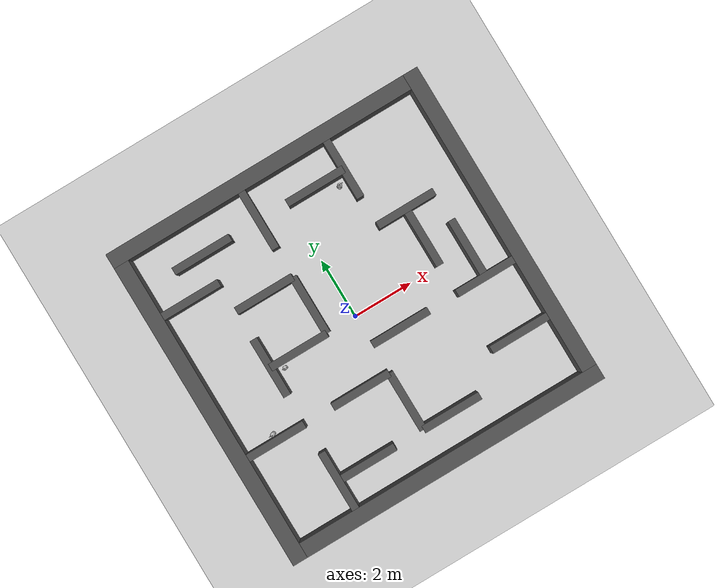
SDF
<sdf version="1.6">
 <world name="default">
  <include><uri>model://ground_plane</uri></include>
  <include><uri>model://sun</uri><pose>0 0 10 0 -0 0</pose></include>
  <spherical_coordinates>
   <surface_model>EARTH_WGS84</surface_model>
   <latitude_deg>38.161479</latitude_deg>
   <longitude_deg>-122.454630</longitude_deg>
   <elevation>488.0</elevation>
   <heading_deg>180</heading_deg>
  </spherical_coordinates>
  <physics type="ode">
   <real_time_update_rate>1000.0</real_time_update_rate>
   <max_step_size>0.001</max_step_size>
   <real_time_factor>1</real_time_factor>
   <ode>
    <solver>
     <type>quick</type>
     <iters>150</iters>
     <precon_iters>0</precon_iters>
     <sor>1.400000</sor>
     <use_dynamic_moi_rescaling>1</use_dynamic_moi_rescaling>
    </solver>
    <constraints>
     <cfm>0.00001</cfm>
     <erp>0.2</erp>
     <contact_max_correcting_vel>2000.000000</contact_max_correcting_vel>
     <contact_surface_layer>0.01000</contact_surface_layer>
    </constraints>
   </ode>
  </physics>
  <model name="maze"><static>1</static><include><uri>model://maze_light</uri></include></model>
  <model name="sohwagi_0">
   <pose>1.659510 3.669576 0 0 0 0</pose>
   <include><uri>model://sohwagi</uri></include>
  </model>
  <model name="sohwagi_2">
   <pose>-4.026260 -1.791360 0 0 0 0</pose>
   <include><uri>model://sohwagi</uri></include>
  </model>
  <model name="sohwagi_3">
   <pose>-2.655270 -0.239181 0 0 0 0</pose>
   <include><uri>model://sohwagi</uri></include>
  </model>
 </world>
</sdf>

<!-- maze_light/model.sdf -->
<sdf version='1.7'>
  <model name='maze_light'>
    <pose>0 0 0 0 0 0</pose>
    <link name='Outer_Wall_0'>
      <collision name='Wall_0_Collision'>
        <geometry>
          <box>
            <size>10.5 0.5 0.5</size>
          </box>
        </geometry>
        <pose>0 0 0 0 -0 0</pose>
      </collision>
      <visual name='Wall_0_Visual'>
        <pose>0 0 0 0 -0 0</pose>
        <geometry>
          <box>
            <size>10.5 0.5 0.5</size>
          </box>
        </geometry>
        <material>
          <script>
            <uri>file://media/materials/scripts/gazebo.material</uri>
            <name>Gazebo/DarkGrey</name>
          </script>
          <ambient>0 0 0 1</ambient>
        </material>
        <meta>
          <layer>0</layer>
        </meta>
      </visual>
      <pose>5.25 0.25 0.25 0 0 -1.5708</pose>
    </link>
    <link name='Outer_Wall_1'>
      <collision name='Wall_1_Collision'>
        <geometry>
          <box>
            <size>10.5 0.5 0.5</size>
          </box>
        </geometry>
        <pose>0 0 0 0 -0 0</pose>
      </collision>
      <visual name='Wall_1_Visual'>
        <pose>0 0 0 0 -0 0</pose>
        <geometry>
          <box>
            <size>10.5 0.5 0.5</size>
          </box>
        </geometry>
        <material>
          <script>
            <uri>file://media/materials/scripts/gazebo.material</uri>
            <name>Gazebo/DarkGrey</name>
          </script>
          <ambient>0 0 0 1</ambient>
        </material>
        <meta>
          <layer>0</layer>
        </meta>
      </visual>
      <pose>-0.25 5.25 0.25 0 0 0</pose>
    </link>
    <link name='Outer_Wall_2'>
      <collision name='Wall_2_Collision'>
        <geometry>
          <box>
            <size>10.5 0.5 0.5</size>
          </box>
        </geometry>
        <pose>0 0 0 0 -0 0</pose>
      </collision>
      <visual name='Wall_2_Visual'>
        <pose>0 0 0 0 -0 0</pose>
        <geometry>
          <box>
            <size>10.5 0.5 0.5</size>
          </box>
        </geometry>
        <material>
          <script>
            <uri>file://media/materials/scripts/gazebo.material</uri>
            <name>Gazebo/DarkGrey</name>
          </script>
          <ambient>0 0 0 1</ambient>
        </material>
        <meta>
          <layer>0</layer>
        </meta>
      </visual>
      <pose>-5.25 -0.25 0.25 0 0 1.5708</pose>
    </link>
    <link name='Outer_Wall_3'>
      <collision name='Wall_3_Collision'>
        <geometry>
          <box>
            <size>10.5 0.5 0.5</size>
          </box>
        </geometry>
        <pose>0 0 0 0 -0 0</pose>
      </collision>
      <visual name='Wall_3_Visual'>
        <pose>0 0 0 0 -0 0</pose>
        <geometry>
          <box>
            <size>10.5 0.5 0.5</size>
          </box>
        </geometry>
        <material>
          <script>
            <uri>file://media/materials/scripts/gazebo.material</uri>
            <name>Gazebo/DarkGrey</name>
          </script>
          <ambient>0 0 0 1</ambient>
        </material>
        <meta>
          <layer>0</layer>
        </meta>
      </visual>
      <pose>0.25 -5.25 0.25 0 0 0</pose>
    </link>
    <link name='Inner_Wall_0'>
      <collision name='Inner_Wall_0_Collision'>
        <geometry>
          <box>
            <size>2 0.25 0.5</size>
          </box>
        </geometry>
        <pose>0 0 0 0 -0 0</pose>
      </collision>
      <visual name='Inner_Wall_0_Visual'>
        <pose>0 0 0 0 -0 0</pose>
        <geometry>
          <box>
            <size>2 0.25 0.5</size>
          </box>
        </geometry>
        <material>
          <script>
            <uri>file://media/materials/scripts/gazebo.material</uri>
            <name>Gazebo/DarkGrey</name>
          </script>
          <ambient>0 0 0 1</ambient>
        </material>
        <meta>
          <layer>0</layer>
        </meta>
      </visual>
      <pose>4 -3 0.25 0 -0 0</pose>
    </link>
    <link name='Inner_Wall_1'>
      <collision name='Inner_Wall_1_Collision'>
        <geometry>
          <box>
            <size>2 0.25 0.5</size>
          </box>
        </geometry>
        <pose>0 0 0 0 -0 0</pose>
      </collision>
      <visual name='Inner_Wall_1_Visual'>
        <pose>0 0 0 0 -0 0</pose>
        <geometry>
          <box>
            <size>2 0.25 0.5</size>
          </box>
        </geometry>
        <material>
          <script>
            <uri>file://media/materials/scripts/gazebo.material</uri>
            <name>Gazebo/DarkGrey</name>
          </script>
          <ambient>0 0 0 1</ambient>
        </material>
        <meta>
          <layer>0</layer>
        </meta>
      </visual>
      <pose>4 -1 0.25 0 -0 0</pose>
    </link>
    <link name='Inner_Wall_2'>
      <collision name='Inner_Wall_2_Collision'>
        <geometry>
          <box>
            <size>2 0.25 0.5</size>
          </box>
        </geometry>
        <pose>0 0 0 0 -0 0</pose>
      </collision>
      <visual name='Inner_Wall_2_Visual'>
        <pose>0 0 0 0 -0 0</pose>
        <geometry>
          <box>
            <size>2 0.25 0.5</size>
          </box>
        </geometry>
        <material>
          <script>
            <uri>file://media/materials/scripts/gazebo.material</uri>
            <name>Gazebo/DarkGrey</name>
          </script>
          <ambient>0 0 0 1</ambient>
        </material>
        <meta>
          <layer>0</layer>
        </meta>
      </visual>
      <pose>1 4 0.25 0 -0 0</pose>
    </link>
    <link name='Inner_Wall_3'>
      <collision name='Inner_Wall_3_Collision'>
        <geometry>
          <box>
            <size>2 0.25 0.5</size>
          </box>
        </geometry>
        <pose>0 0 0 0 -0 0</pose>
      </collision>
      <visual name='Inner_Wall_3_Visual'>
        <pose>0 0 0 0 -0 0</pose>
        <geometry>
          <box>
            <size>2 0.25 0.5</size>
          </box>
        </geometry>
        <material>
          <script>
            <uri>file://media/materials/scripts/gazebo.material</uri>
            <name>Gazebo/DarkGrey</name>
          </script>
          <ambient>0 0 0 1</ambient>
        </material>
        <meta>
          <layer>0</layer>
        </meta>
      </visual>
      <pose>2 4 0.25 0 -0 1.5708</pose>
    </link>
    <link name='Inner_Wall_4'>
      <collision name='Inner_Wall_4_Collision'>
        <geometry>
          <box>
            <size>2 0.25 0.5</size>
          </box>
        </geometry>
        <pose>0 0 0 0 -0 0</pose>
      </collision>
      <visual name='Inner_Wall_4_Visual'>
        <pose>0 0 0 0 -0 0</pose>
        <geometry>
          <box>
            <size>2 0.25 0.5</size>
          </box>
        </geometry>
        <material>
          <script>
            <uri>file://media/materials/scripts/gazebo.material</uri>
            <name>Gazebo/DarkGrey</name>
          </script>
          <ambient>0 0 0 1</ambient>
        </material>
        <meta>
          <layer>0</layer>
        </meta>
      </visual>
      <pose>-1 4 0.25 0 -0 1.5708</pose>
    </link>
    <link name='Inner_Wall_5'>
      <collision name='Inner_Wall_5_Collision'>
        <geometry>
          <box>
            <size>2 0.25 0.5</size>
          </box>
        </geometry>
        <pose>0 0 0 0 -0 0</pose>
      </collision>
      <visual name='Inner_Wall_5_Visual'>
        <pose>0 0 0 0 -0 0</pose>
        <geometry>
          <box>
            <size>2 0.25 0.5</size>
          </box>
        </geometry>
        <material>
          <script>
            <uri>file://media/materials/scripts/gazebo.material</uri>
            <name>Gazebo/DarkGrey</name>
          </script>
          <ambient>0 0 0 1</ambient>
        </material>
        <meta>
          <layer>0</layer>
        </meta>
      </visual>
      <pose>-2 2 0.25 0 -0 0</pose>
    </link>
    <link name='Inner_Wall_6'>
      <collision name='Inner_Wall_6_Collision'>
        <geometry>
          <box>
            <size>2 0.25 0.5</size>
          </box>
        </geometry>
        <pose>0 0 0 0 -0 0</pose>
      </collision>
      <visual name='Inner_Wall_6_Visual'>
        <pose>0 0 0 0 -0 0</pose>
        <geometry>
          <box>
            <size>2 0.25 0.5</size>
          </box>
        </geometry>
        <material>
          <script>
            <uri>file://media/materials/scripts/gazebo.material</uri>
            <name>Gazebo/DarkGrey</name>
          </script>
          <ambient>0 0 0 1</ambient>
        </material>
        <meta>
          <layer>0</layer>
        </meta>
      </visual>
      <pose>-2 0 0.25 0 -0 0</pose>
    </link>
    <link name='Inner_Wall_7'>
      <collision name='Inner_Wall_7_Collision'>
        <geometry>
          <box>
            <size>2 0.25 0.5</size>
          </box>
        </geometry>
        <pose>0 0 0 0 -0 0</pose>
      </collision>
      <visual name='Inner_Wall_7_Visual'>
        <pose>0 0 0 0 -0 0</pose>
        <geometry>
          <box>
            <size>2 0.25 0.5</size>
          </box>
        </geometry>
        <material>
          <script>
            <uri>file://media/materials/scripts/gazebo.material</uri>
            <name>Gazebo/DarkGrey</name>
          </script>
          <ambient>0 0 0 1</ambient>
        </material>
        <meta>
          <layer>0</layer>
        </meta>
      </visual>
      <pose>-1 -2 0.25 0 -0 0</pose>
    </link>
    <link name='Inner_Wall_8'>
      <collision name='Inner_Wall_8_Collision'>
        <geometry>
          <box>
            <size>2 0.25 0.5</size>
          </box>
        </geometry>
        <pose>0 0 0 0 -0 0</pose>
      </collision>
      <visual name='Inner_Wall_8_Visual'>
        <pose>0 0 0 0 -0 0</pose>
        <geometry>
          <box>
            <size>2 0.25 0.5</size>
          </box>
        </geometry>
        <material>
          <script>
            <uri>file://media/materials/scripts/gazebo.material</uri>
            <name>Gazebo/DarkGrey</name>
          </script>
          <ambient>0 0 0 1</ambient>
        </material>
        <meta>
          <layer>0</layer>
        </meta>
      </visual>
      <pose>1 -4 0.25 0 -0 0</pose>
    </link>
    <link name='Inner_Wall_9'>
      <collision name='Inner_Wall_9_Collision'>
        <geometry>
          <box>
            <size>2 0.25 0.5</size>
          </box>
        </geometry>
        <pose>0 0 0 0 -0 0</pose>
      </collision>
      <visual name='Inner_Wall_9_Visual'>
        <pose>0 0 0 0 -0 0</pose>
        <geometry>
          <box>
            <size>2 0.25 0.5</size>
          </box>
        </geometry>
        <material>
          <script>
            <uri>file://media/materials/scripts/gazebo.material</uri>
            <name>Gazebo/DarkGrey</name>
          </script>
          <ambient>0 0 0 1</ambient>
        </material>
        <meta>
          <layer>0</layer>
        </meta>
      </visual>
      <pose>3 2 0.25 0 -0 0</pose>
    </link>
    <link name='Inner_Wall_10'>
      <collision name='Inner_Wall_10_Collision'>
        <geometry>
          <box>
            <size>2 0.25 0.5</size>
          </box>
        </geometry>
        <pose>0 0 0 0 -0 0</pose>
      </collision>
      <visual name='Inner_Wall_10_Visual'>
        <pose>0 0 0 0 -0 0</pose>
        <geometry>
          <box>
            <size>2 0.25 0.5</size>
          </box>
        </geometry>
        <material>
          <script>
            <uri>file://media/materials/scripts/gazebo.material</uri>
            <name>Gazebo/DarkGrey</name>
          </script>
          <ambient>0 0 0 1</ambient>
        </material>
        <meta>
          <layer>0</layer>
        </meta>
      </visual>
      <pose>3 1 0.25 0 -0 1.5708</pose>
    </link>
    <link name='Inner_Wall_11'>
      <collision name='Inner_Wall_11_Collision'>
        <geometry>
          <box>
            <size>2 0.25 0.5</size>
          </box>
        </geometry>
        <pose>0 0 0 0 -0 0</pose>
      </collision>
      <visual name='Inner_Wall_11_Visual'>
        <pose>0 0 0 0 -0 0</pose>
        <geometry>
          <box>
            <size>2 0.25 0.5</size>
          </box>
        </geometry>
        <material>
          <script>
            <uri>file://media/materials/scripts/gazebo.material</uri>
            <name>Gazebo/DarkGrey</name>
          </script>
          <ambient>0 0 0 1</ambient>
        </material>
        <meta>
          <layer>0</layer>
        </meta>
      </visual>
      <pose>-1 1 0.25 0 -0 1.5708</pose>
    </link>
    <link name='Inner_Wall_12'>
      <collision name='Inner_Wall_12_Collision'>
        <geometry>
          <box>
            <size>2 0.25 0.5</size>
          </box>
        </geometry>
        <pose>0 0 0 0 -0 0</pose>
      </collision>
      <visual name='Inner_Wall_12_Visual'>
        <pose>0 0 0 0 -0 0</pose>
        <geometry>
          <box>
            <size>2 0.25 0.5</size>
          </box>
        </geometry>
        <material>
          <script>
            <uri>file://media/materials/scripts/gazebo.material</uri>
            <name>Gazebo/DarkGrey</name>
          </script>
          <ambient>0 0 0 1</ambient>
        </material>
        <meta>
          <layer>0</layer>
        </meta>
      </visual>
      <pose>0 -3 0.25 0 -0 1.5708</pose>
    </link>
    <link name='Inner_Wall_13'>
      <collision name='Inner_Wall_13_Collision'>
        <geometry>
          <box>
            <size>2 0.25 0.5</size>
          </box>
        </geometry>
        <pose>0 0 0 0 -0 0</pose>
      </collision>
      <visual name='Inner_Wall_13_Visual'>
        <pose>0 0 0 0 -0 0</pose>
        <geometry>
          <box>
            <size>2 0.25 0.5</size>
          </box>
        </geometry>
        <material>
          <script>
            <uri>file://media/materials/scripts/gazebo.material</uri>
            <name>Gazebo/DarkGrey</name>
          </script>
          <ambient>0 0 0 1</ambient>
        </material>
        <meta>
          <layer>0</layer>
        </meta>
      </visual>
      <pose>1 -1 0.25 0 -0 0</pose>
    </link>
    <link name='Inner_Wall_14'>
      <collision name='Inner_Wall_14_Collision'>
        <geometry>
          <box>
            <size>2 0.25 0.5</size>
          </box>
        </geometry>
        <pose>0 0 0 0 -0 0</pose>
      </collision>
      <visual name='Inner_Wall_14_Visual'>
        <pose>0 0 0 0 -0 0</pose>
        <geometry>
          <box>
            <size>2 0.25 0.5</size>
          </box>
        </geometry>
        <material>
          <script>
            <uri>file://media/materials/scripts/gazebo.material</uri>
            <name>Gazebo/DarkGrey</name>
          </script>
          <ambient>0 0 0 1</ambient>
        </material>
        <meta>
          <layer>0</layer>
        </meta>
      </visual>
      <pose>-3 4 0.25 0 -0 0</pose>
    </link>
    <link name='Inner_Wall_15'>
      <collision name='Inner_Wall_15_Collision'>
        <geometry>
          <box>
            <size>2 0.25 0.5</size>
          </box>
        </geometry>
        <pose>0 0 0 0 -0 0</pose>
      </collision>
      <visual name='Inner_Wall_15_Visual'>
        <pose>0 0 0 0 -0 0</pose>
        <geometry>
          <box>
            <size>2 0.25 0.5</size>
          </box>
        </geometry>
        <material>
          <script>
            <uri>file://media/materials/scripts/gazebo.material</uri>
            <name>Gazebo/DarkGrey</name>
          </script>
          <ambient>0 0 0 1</ambient>
        </material>
        <meta>
          <layer>0</layer>
        </meta>
      </visual>
      <pose>4 0 0.25 0 -0 1.5708</pose>
    </link>
    <link name='Inner_Wall_16'>
      <collision name='Inner_Wall_16_Collision'>
        <geometry>
          <box>
            <size>2 0.25 0.5</size>
          </box>
        </geometry>
        <pose>0 0 0 0 -0 0</pose>
      </collision>
      <visual name='Inner_Wall_16_Visual'>
        <pose>0 0 0 0 -0 0</pose>
        <geometry>
          <box>
            <size>2 0.25 0.5</size>
          </box>
        </geometry>
        <material>
          <script>
            <uri>file://media/materials/scripts/gazebo.material</uri>
            <name>Gazebo/DarkGrey</name>
          </script>
          <ambient>0 0 0 1</ambient>
        </material>
        <meta>
          <layer>0</layer>
        </meta>
      </visual>
      <pose>-4 3 0.25 0 -0 0</pose>
    </link>
    <link name='Inner_Wall_17'>
      <collision name='Inner_Wall_17_Collision'>
        <geometry>
          <box>
            <size>2 0.25 0.5</size>
          </box>
        </geometry>
        <pose>0 0 0 0 -0 0</pose>
      </collision>
      <visual name='Inner_Wall_17_Visual'>
        <pose>0 0 0 0 -0 0</pose>
        <geometry>
          <box>
            <size>2 0.25 0.5</size>
          </box>
        </geometry>
        <material>
          <script>
            <uri>file://media/materials/scripts/gazebo.material</uri>
            <name>Gazebo/DarkGrey</name>
          </script>
          <ambient>0 0 0 1</ambient>
        </material>
        <meta>
          <layer>0</layer>
        </meta>
      </visual>
      <pose>-3 0 0.25 0 -0 1.5708</pose>
    </link>
    <link name='Inner_Wall_18'>
      <collision name='Inner_Wall_18_Collision'>
        <geometry>
          <box>
            <size>2 0.25 0.5</size>
          </box>
        </geometry>
        <pose>0 0 0 0 -0 0</pose>
      </collision>
      <visual name='Inner_Wall_18_Visual'>
        <pose>0 0 0 0 -0 0</pose>
        <geometry>
          <box>
            <size>2 0.25 0.5</size>
          </box>
        </geometry>
        <material>
          <script>
            <uri>file://media/materials/scripts/gazebo.material</uri>
            <name>Gazebo/DarkGrey</name>
          </script>
          <ambient>0 0 0 1</ambient>
        </material>
        <meta>
          <layer>0</layer>
        </meta>
      </visual>
      <pose>-4 -2 0.25 0 -0 0</pose>
    </link>
    <link name='Inner_Wall_19'>
      <collision name='Inner_Wall_19_Collision'>
        <geometry>
          <box>
            <size>2 0.25 0.5</size>
          </box>
        </geometry>
        <pose>0 0 0 0 -0 0</pose>
      </collision>
      <visual name='Inner_Wall_19_Visual'>
        <pose>0 0 0 0 -0 0</pose>
        <geometry>
          <box>
            <size>2 0.25 0.5</size>
          </box>
        </geometry>
        <material>
          <script>
            <uri>file://media/materials/scripts/gazebo.material</uri>
            <name>Gazebo/DarkGrey</name>
          </script>
          <ambient>0 0 0 1</ambient>
        </material>
        <meta>
          <layer>0</layer>
        </meta>
      </visual>
      <pose>-3 -4 0.25 0 -0 1.5708</pose>
    </link>
    <link name='Inner_Wall_20'>
      <collision name='Inner_Wall_20_Collision'>
        <geometry>
          <box>
            <size>2 0.25 0.5</size>
          </box>
        </geometry>
        <pose>0 0 0 0 -0 0</pose>
      </collision>
      <visual name='Inner_Wall_20_Visual'>
        <pose>0 0 0 0 -0 0</pose>
        <geometry>
          <box>
            <size>2 0.25 0.5</size>
          </box>
        </geometry>
        <material>
          <script>
            <uri>file://media/materials/scripts/gazebo.material</uri>
            <name>Gazebo/DarkGrey</name>
          </script>
          <ambient>0 0 0 1</ambient>
        </material>
        <meta>
          <layer>0</layer>
        </meta>
      </visual>
      <pose>-2 -4 0.25 0 -0 0</pose>
    </link>

    <link name='light_link_0'>
      <pose>-10.5434 0 10.6208 0 -0.563594 0</pose>
      <light name='user_spot_light_0' type='spot'>
        <pose>-1.96683 0.902064 1 0 -0 0</pose>
        <diffuse>0.5 0.5 0.5 1</diffuse>
        <specular>0.1 0.1 0.1 1</specular>
        <direction>0 0 -1</direction>
        <attenuation>
          <range>20</range>
          <constant>0.5</constant>
          <linear>0.01</linear>
          <quadratic>0.001</quadratic>
        </attenuation>
        <cast_shadows>0</cast_shadows>
        <spot>
          <inner_angle>0.6</inner_angle>
          <outer_angle>1</outer_angle>
          <falloff>1</falloff>
        </spot>
      </light>
    </link>

    <link name='light_link_1'>
      <pose>0 -15.0454 11.2272 0.969351 -0 0</pose>
      <light name='user_spot_light_1' type='spot'>
        <pose>0 -8 1 0 -0 0</pose>
        <diffuse>0.5 0.5 0.5 1</diffuse>
        <specular>0.1 0.1 0.1 1</specular>
        <direction>0 0 -1</direction>
        <attenuation>
          <range>30</range>
          <constant>0.5</constant>
          <linear>0.01</linear>
          <quadratic>0.001</quadratic>
        </attenuation>
        <cast_shadows>0</cast_shadows>
        <spot>
          <inner_angle>0.6</inner_angle>
          <outer_angle>1</outer_angle>
          <falloff>1</falloff>
        </spot>
      </light>
    </link>

    <link name='light_link_2'>
      <pose>12.553316 0 8 0 0.78597 0</pose>
      <light name='user_spot_light_2' type='spot'>
        <pose>0 0 0 0 0 0</pose>
        <diffuse>0.5 0.5 0.5 1</diffuse>
        <specular>0.1 0.1 0.1 1</specular>
        <direction>0 0 -1</direction>
        <attenuation>
          <range>20</range>
          <constant>0.5</constant>
          <linear>0.01</linear>
          <quadratic>0.001</quadratic>
        </attenuation>
        <cast_shadows>0</cast_shadows>
        <spot>
          <inner_angle>0.6</inner_angle>
          <outer_angle>1</outer_angle>
          <falloff>1</falloff>
        </spot>
      </light>
    </link>

    <link name='light_link_3'>
      <pose>0 19.210722 14.210317 -1.075717 0 0</pose>
      <light name='user_spot_light_3' type='spot'>
        <pose>0 0 0 0 0 0</pose>
        <diffuse>0.5 0.5 0.5 1</diffuse>
        <specular>0.1 0.1 0.1 1</specular>
        <direction>0 0 -1</direction>
        <attenuation>
          <range>30</range>
          <constant>0.5</constant>
          <linear>0.01</linear>
          <quadratic>0.001</quadratic>
        </attenuation>
        <cast_shadows>0</cast_shadows>
        <spot>
          <inner_angle>0.6</inner_angle>
          <outer_angle>1</outer_angle>
          <falloff>1</falloff>
        </spot>
      </light>
    </link>

    <static>1</static>
  </model>

</sdf>

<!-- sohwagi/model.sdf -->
<sdf version="1.5">
  <model name="sohwagi">
    <link name="link">
      <collision name="collision">
        <geometry>
          <mesh>
            <scale>0.1 0.1 0.1 0.1</scale>
            <uri>model://sohwagi/meshes/sohwagi.dae</uri>
          </mesh>
        </geometry>
      </collision>
      <visual name="visual">
        <geometry>
          <mesh>
            <scale>0.1 0.1 0.1 0.1</scale>
            <uri>model://sohwagi/meshes/sohwagi.dae</uri>
          </mesh>
        </geometry>
        <material>
          <script>
            <uri>model://sohwagi/materials/scripts</uri>
            <uri>model://sohwagi/materials/textures</uri>
            <name>sohwagi/Diffuse</name>
          </script>
        </material>
      </visual>
    </link>
  </model>
</sdf>
